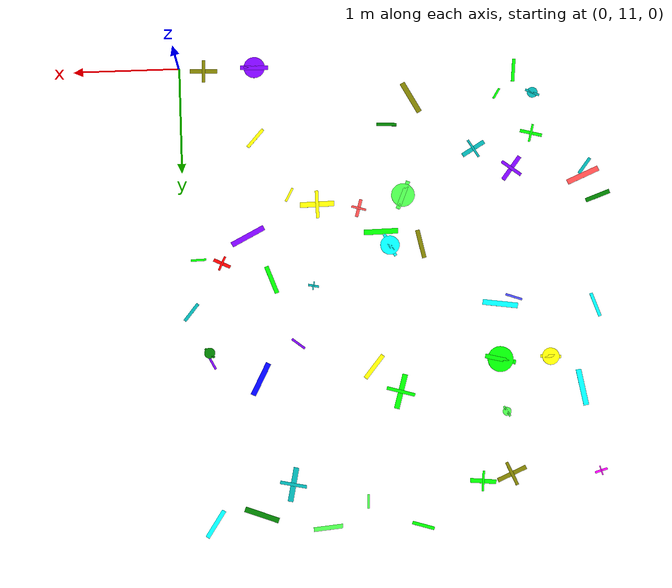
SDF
<sdf version="1.6">
 <world name="default">
  <model name="letter_Y_931">
   <static>true</static>
   <pose>-3.79 12.06 0.004 0 0 4.058</pose>
   <link name="link">
    <visual name="visual">
     <geometry><box><size>0.18 0.03 0.002</size></box></geometry>
     <material>
      <ambient>0.0 0.7 0.7 1</ambient>
      <diffuse>0.0 0.7 0.7 1</diffuse>
      <specular>0.1 0.1 0.1 1</specular>
     </material>
    </visual>
   </link>
  </model>
  <model name="letter_P_932">
   <static>true</static>
   <pose>-3.77 12.15 0.007 0 0 3.541</pose>
   <link name="link">
    <visual name="visual">
     <geometry><box><size>0.32 0.05 0.002</size></box></geometry>
     <material>
      <ambient>1.0 0.3 0.3 1</ambient>
      <diffuse>1.0 0.3 0.3 1</diffuse>
      <specular>0.1 0.1 0.1 1</specular>
     </material>
    </visual>
   </link>
  </model>
  <model name="letter_Y_933">
   <static>true</static>
   <pose>-3.90 12.35 0.004 0 0 3.486</pose>
   <link name="link">
    <visual name="visual">
     <geometry><box><size>0.24 0.04 0.002</size></box></geometry>
     <material>
      <ambient>0.0 0.5 0.0 1</ambient>
      <diffuse>0.0 0.5 0.0 1</diffuse>
      <specular>0.1 0.1 0.1 1</specular>
     </material>
    </visual>
   </link>
  </model>
  <model name="letter_N_934">
   <static>true</static>
   <pose>-3.83 13.38 0.004 0 0 5.041</pose>
   <link name="link">
    <visual name="visual">
     <geometry><box><size>0.23 0.03 0.002</size></box></geometry>
     <material>
      <ambient>0.0 1.0 1.0 1</ambient>
      <diffuse>0.0 1.0 1.0 1</diffuse>
      <specular>0.1 0.1 0.1 1</specular>
     </material>
    </visual>
   </link>
  </model>
  <model name="letter_P_937">
   <static>true</static>
   <pose>-3.67 14.15 0.011 0 0 4.885</pose>
   <link name="link">
    <visual name="visual">
     <geometry><box><size>0.34 0.05 0.002</size></box></geometry>
     <material>
      <ambient>0.0 1.0 1.0 1</ambient>
      <diffuse>0.0 1.0 1.0 1</diffuse>
      <specular>0.1 0.1 0.1 1</specular>
     </material>
    </visual>
   </link>
  </model>
  <model name="letter_E_940">
   <static>true</static>
   <pose>-3.81 14.93 0.004 0 0 3.435</pose>
   <link name="link">
    <visual name="visual">
     <geometry><box><size>0.12 0.02 0.002</size></box></geometry>
     <material>
      <ambient>1.0 0.0 1.0 1</ambient>
      <diffuse>1.0 0.0 1.0 1</diffuse>
      <specular>0.1 0.1 0.1 1</specular>
     </material>
    </visual>
    <visual name="visual2">
     <pose>0 0 0.001 0 0 1.57</pose>
     <geometry><box><size>0.09 0.01 0.001</size></box></geometry>
     <material><ambient>1.0 0.0 1.0 1</ambient><diffuse>1.0 0.0 1.0 1</diffuse></material>
    </visual>
   </link>
  </model>
  <model name="letter_M_998">
   <static>true</static>
   <pose>-3.16 11.12 0.007 0 0 4.607</pose>
   <link name="link">
    <visual name="visual">
     <geometry><box><size>0.22 0.03 0.002</size></box></geometry>
     <material>
      <ambient>0.0 1.0 0.0 1</ambient>
      <diffuse>0.0 1.0 0.0 1</diffuse>
      <specular>0.1 0.1 0.1 1</specular>
     </material>
    </visual>
   </link>
  </model>
  <model name="letter_Q_999">
   <static>true</static>
   <pose>-3.33 11.34 0.004 0 0 2.718</pose>
   <link name="link">
    <visual name="visual">
     <geometry><box><size>0.14 0.02 0.002</size></box></geometry>
     <material>
      <ambient>0.0 0.7 0.7 1</ambient>
      <diffuse>0.0 0.7 0.7 1</diffuse>
      <specular>0.1 0.1 0.1 1</specular>
     </material>
    </visual>
    <visual name="visual2">
     <geometry><cylinder><radius>0.05</radius><length>0.002</length></cylinder></geometry>
     <material><ambient>0.0 0.7 0.7 1</ambient><diffuse>0.0 0.7 0.7 1</diffuse></material>
    </visual>
   </link>
  </model>
  <model name="letter_S_1000">
   <static>true</static>
   <pose>-2.99 11.34 0.013 0 0 1.016</pose>
   <link name="link">
    <visual name="visual">
     <geometry><box><size>0.11 0.02 0.002</size></box></geometry>
     <material>
      <ambient>0.0 1.0 0.0 1</ambient>
      <diffuse>0.0 1.0 0.0 1</diffuse>
      <specular>0.1 0.1 0.1 1</specular>
     </material>
    </visual>
   </link>
  </model>
  <model name="letter_E_1001">
   <static>true</static>
   <pose>-3.30 11.73 0.009 0 0 6.027</pose>
   <link name="link">
    <visual name="visual">
     <geometry><box><size>0.21 0.03 0.002</size></box></geometry>
     <material>
      <ambient>0.0 1.0 0.0 1</ambient>
      <diffuse>0.0 1.0 0.0 1</diffuse>
      <specular>0.1 0.1 0.1 1</specular>
     </material>
    </visual>
    <visual name="visual2">
     <pose>0 0 0.001 0 0 1.57</pose>
     <geometry><box><size>0.17 0.02 0.001</size></box></geometry>
     <material><ambient>0.0 1.0 0.0 1</ambient><diffuse>0.0 1.0 0.0 1</diffuse></material>
    </visual>
   </link>
  </model>
  <model name="letter_A_1002">
   <static>true</static>
   <pose>-2.75 11.86 0.009 0 0 3.680</pose>
   <link name="link">
    <visual name="visual">
     <geometry><box><size>0.24 0.04 0.002</size></box></geometry>
     <material>
      <ambient>0.0 0.7 0.7 1</ambient>
      <diffuse>0.0 0.7 0.7 1</diffuse>
      <specular>0.1 0.1 0.1 1</specular>
     </material>
    </visual>
    <visual name="visual2">
     <pose>0 0 0.001 0 0 1.57</pose>
     <geometry><box><size>0.19 0.02 0.001</size></box></geometry>
     <material><ambient>0.0 0.7 0.7 1</ambient><diffuse>0.0 0.7 0.7 1</diffuse></material>
    </visual>
   </link>
  </model>
  <model name="letter_H_1003">
   <static>true</static>
   <pose>-3.10 12.06 0.011 0 0 0.919</pose>
   <link name="link">
    <visual name="visual">
     <geometry><box><size>0.27 0.04 0.002</size></box></geometry>
     <material>
      <ambient>0.5 0.0 1.0 1</ambient>
      <diffuse>0.5 0.0 1.0 1</diffuse>
      <specular>0.1 0.1 0.1 1</specular>
     </material>
    </visual>
    <visual name="visual2">
     <pose>0 0 0.001 0 0 1.57</pose>
     <geometry><box><size>0.22 0.03 0.001</size></box></geometry>
     <material><ambient>0.5 0.0 1.0 1</ambient><diffuse>0.5 0.0 1.0 1</diffuse></material>
    </visual>
   </link>
  </model>
  <model name="letter_D_1004">
   <static>true</static>
   <pose>-3.07 13.28 0.012 0 0 5.943</pose>
   <link name="link">
    <visual name="visual">
     <geometry><box><size>0.16 0.02 0.002</size></box></geometry>
     <material>
      <ambient>0.3 0.3 1.0 1</ambient>
      <diffuse>0.3 0.3 1.0 1</diffuse>
      <specular>0.1 0.1 0.1 1</specular>
     </material>
    </visual>
   </link>
  </model>
  <model name="letter_B_1005">
   <static>true</static>
   <pose>-2.94 13.34 0.005 0 0 3.003</pose>
   <link name="link">
    <visual name="visual">
     <geometry><box><size>0.33 0.05 0.002</size></box></geometry>
     <material>
      <ambient>0.0 1.0 1.0 1</ambient>
      <diffuse>0.0 1.0 1.0 1</diffuse>
      <specular>0.1 0.1 0.1 1</specular>
     </material>
    </visual>
   </link>
  </model>
  <model name="letter_Q_1006">
   <static>true</static>
   <pose>-2.92 13.86 0.011 0 0 2.900</pose>
   <link name="link">
    <visual name="visual">
     <geometry><box><size>0.29 0.04 0.002</size></box></geometry>
     <material>
      <ambient>0.0 1.0 0.0 1</ambient>
      <diffuse>0.0 1.0 0.0 1</diffuse>
      <specular>0.1 0.1 0.1 1</specular>
     </material>
    </visual>
    <visual name="visual2">
     <geometry><cylinder><radius>0.12</radius><length>0.002</length></cylinder></geometry>
     <material><ambient>0.0 1.0 0.0 1</ambient><diffuse>0.0 1.0 0.0 1</diffuse></material>
    </visual>
   </link>
  </model>
  <model name="letter_C_1007">
   <static>true</static>
   <pose>-3.39 13.85 0.008 0 0 3.086</pose>
   <link name="link">
    <visual name="visual">
     <geometry><box><size>0.19 0.03 0.002</size></box></geometry>
     <material>
      <ambient>1.0 1.0 0.0 1</ambient>
      <diffuse>1.0 1.0 0.0 1</diffuse>
      <specular>0.1 0.1 0.1 1</specular>
     </material>
    </visual>
    <visual name="visual2">
     <geometry><cylinder><radius>0.08</radius><length>0.002</length></cylinder></geometry>
     <material><ambient>1.0 1.0 0.0 1</ambient><diffuse>1.0 1.0 0.0 1</diffuse></material>
    </visual>
   </link>
  </model>
  <model name="letter_Q_1008">
   <static>true</static>
   <pose>-2.96 14.35 0.006 0 0 5.243</pose>
   <link name="link">
    <visual name="visual">
     <geometry><box><size>0.11 0.02 0.002</size></box></geometry>
     <material>
      <ambient>0.3 1.0 0.3 1</ambient>
      <diffuse>0.3 1.0 0.3 1</diffuse>
      <specular>0.1 0.1 0.1 1</specular>
     </material>
    </visual>
    <visual name="visual2">
     <geometry><cylinder><radius>0.04</radius><length>0.002</length></cylinder></geometry>
     <material><ambient>0.3 1.0 0.3 1</ambient><diffuse>0.3 1.0 0.3 1</diffuse></material>
    </visual>
   </link>
  </model>
  <model name="letter_E_1009">
   <static>true</static>
   <pose>-2.98 14.93 0.009 0 0 3.552</pose>
   <link name="link">
    <visual name="visual">
     <geometry><box><size>0.29 0.04 0.002</size></box></geometry>
     <material>
      <ambient>0.5 0.5 0.0 1</ambient>
      <diffuse>0.5 0.5 0.0 1</diffuse>
      <specular>0.1 0.1 0.1 1</specular>
     </material>
    </visual>
    <visual name="visual2">
     <pose>0 0 0.001 0 0 1.57</pose>
     <geometry><box><size>0.23 0.03 0.001</size></box></geometry>
     <material><ambient>0.5 0.5 0.0 1</ambient><diffuse>0.5 0.5 0.0 1</diffuse></material>
    </visual>
   </link>
  </model>
  <model name="letter_A_1010">
   <static>true</static>
   <pose>-2.71 14.99 0.013 0 0 6.191</pose>
   <link name="link">
    <visual name="visual">
     <geometry><box><size>0.24 0.04 0.002</size></box></geometry>
     <material>
      <ambient>0.0 1.0 0.0 1</ambient>
      <diffuse>0.0 1.0 0.0 1</diffuse>
      <specular>0.1 0.1 0.1 1</specular>
     </material>
    </visual>
    <visual name="visual2">
     <pose>0 0 0.001 0 0 1.57</pose>
     <geometry><box><size>0.19 0.02 0.001</size></box></geometry>
     <material><ambient>0.0 1.0 0.0 1</ambient><diffuse>0.0 1.0 0.0 1</diffuse></material>
    </visual>
   </link>
  </model>
  <model name="letter_J_1062">
   <static>true</static>
   <pose>-2.18 11.35 0.005 0 0 5.207</pose>
   <link name="link">
    <visual name="visual">
     <geometry><box><size>0.32 0.05 0.002</size></box></geometry>
     <material>
      <ambient>0.5 0.5 0.0 1</ambient>
      <diffuse>0.5 0.5 0.0 1</diffuse>
      <specular>0.1 0.1 0.1 1</specular>
     </material>
    </visual>
   </link>
  </model>
  <model name="letter_O_1065">
   <static>true</static>
   <pose>-2.07 12.28 0.010 0 0 1.176</pose>
   <link name="link">
    <visual name="visual">
     <geometry><box><size>0.28 0.04 0.002</size></box></geometry>
     <material>
      <ambient>0.3 1.0 0.3 1</ambient>
      <diffuse>0.3 1.0 0.3 1</diffuse>
      <specular>0.1 0.1 0.1 1</specular>
     </material>
    </visual>
    <visual name="visual2">
     <geometry><cylinder><radius>0.11</radius><length>0.002</length></cylinder></geometry>
     <material><ambient>0.3 1.0 0.3 1</ambient><diffuse>0.3 1.0 0.3 1</diffuse></material>
    </visual>
   </link>
  </model>
  <model name="letter_R_1066">
   <static>true</static>
   <pose>-1.94 11.60 0.003 0 0 6.237</pose>
   <link name="link">
    <visual name="visual">
     <geometry><box><size>0.19 0.03 0.002</size></box></geometry>
     <material>
      <ambient>0.0 0.5 0.0 1</ambient>
      <diffuse>0.0 0.5 0.0 1</diffuse>
      <specular>0.1 0.1 0.1 1</specular>
     </material>
    </visual>
   </link>
  </model>
  <model name="letter_I_1067">
   <static>true</static>
   <pose>-1.65 12.39 0.012 0 0 4.436</pose>
   <link name="link">
    <visual name="visual">
     <geometry><box><size>0.17 0.03 0.002</size></box></geometry>
     <material>
      <ambient>1.0 0.3 0.3 1</ambient>
      <diffuse>1.0 0.3 0.3 1</diffuse>
      <specular>0.1 0.1 0.1 1</specular>
     </material>
    </visual>
    <visual name="visual2">
     <pose>0 0 0.001 0 0 1.57</pose>
     <geometry><box><size>0.14 0.02 0.001</size></box></geometry>
     <material><ambient>1.0 0.3 0.3 1</ambient><diffuse>1.0 0.3 0.3 1</diffuse></material>
    </visual>
   </link>
  </model>
  <model name="letter_K_1068">
   <static>true</static>
   <pose>-2.22 12.75 0.006 0 0 1.777</pose>
   <link name="link">
    <visual name="visual">
     <geometry><box><size>0.27 0.04 0.002</size></box></geometry>
     <material>
      <ambient>0.5 0.5 0.0 1</ambient>
      <diffuse>0.5 0.5 0.0 1</diffuse>
      <specular>0.1 0.1 0.1 1</specular>
     </material>
    </visual>
   </link>
  </model>
  <model name="letter_G_1069">
   <static>true</static>
   <pose>-1.93 12.75 0.005 0 0 5.164</pose>
   <link name="link">
    <visual name="visual">
     <geometry><box><size>0.23 0.03 0.002</size></box></geometry>
     <material>
      <ambient>0.0 1.0 1.0 1</ambient>
      <diffuse>0.0 1.0 1.0 1</diffuse>
      <specular>0.1 0.1 0.1 1</specular>
     </material>
    </visual>
    <visual name="visual2">
     <geometry><cylinder><radius>0.09</radius><length>0.002</length></cylinder></geometry>
     <material><ambient>0.0 1.0 1.0 1</ambient><diffuse>0.0 1.0 1.0 1</diffuse></material>
    </visual>
   </link>
  </model>
  <model name="letter_J_1070">
   <static>true</static>
   <pose>-1.85 12.62 0.010 0 0 0.019</pose>
   <link name="link">
    <visual name="visual">
     <geometry><box><size>0.32 0.05 0.002</size></box></geometry>
     <material>
      <ambient>0.0 1.0 0.0 1</ambient>
      <diffuse>0.0 1.0 0.0 1</diffuse>
      <specular>0.1 0.1 0.1 1</specular>
     </material>
    </visual>
   </link>
  </model>
  <model name="letter_I_1071">
   <static>true</static>
   <pose>-1.98 14.13 0.005 0 0 1.290</pose>
   <link name="link">
    <visual name="visual">
     <geometry><box><size>0.33 0.05 0.002</size></box></geometry>
     <material>
      <ambient>0.0 1.0 0.0 1</ambient>
      <diffuse>0.0 1.0 0.0 1</diffuse>
      <specular>0.1 0.1 0.1 1</specular>
     </material>
    </visual>
    <visual name="visual2">
     <pose>0 0 0.001 0 0 1.57</pose>
     <geometry><box><size>0.27 0.03 0.001</size></box></geometry>
     <material><ambient>0.0 1.0 0.0 1</ambient><diffuse>0.0 1.0 0.0 1</diffuse></material>
    </visual>
   </link>
  </model>
  <model name="letter_W_1072">
   <static>true</static>
   <pose>-1.74 13.89 0.007 0 0 0.888</pose>
   <link name="link">
    <visual name="visual">
     <geometry><box><size>0.27 0.04 0.002</size></box></geometry>
     <material>
      <ambient>1.0 1.0 0.0 1</ambient>
      <diffuse>1.0 1.0 0.0 1</diffuse>
      <specular>0.1 0.1 0.1 1</specular>
     </material>
    </visual>
   </link>
  </model>
  <model name="letter_Z_1073">
   <static>true</static>
   <pose>-2.14 15.38 0.011 0 0 2.842</pose>
   <link name="link">
    <visual name="visual">
     <geometry><box><size>0.21 0.03 0.002</size></box></geometry>
     <material>
      <ambient>0.0 1.0 0.0 1</ambient>
      <diffuse>0.0 1.0 0.0 1</diffuse>
      <specular>0.1 0.1 0.1 1</specular>
     </material>
    </visual>
   </link>
  </model>
  <model name="letter_P_1074">
   <static>true</static>
   <pose>-1.64 15.14 0.005 0 0 1.542</pose>
   <link name="link">
    <visual name="visual">
     <geometry><box><size>0.13 0.02 0.002</size></box></geometry>
     <material>
      <ambient>0.3 1.0 0.3 1</ambient>
      <diffuse>0.3 1.0 0.3 1</diffuse>
      <specular>0.1 0.1 0.1 1</specular>
     </material>
    </visual>
   </link>
  </model>
  <model name="letter_C_1121">
   <static>true</static>
   <pose>-0.71 11.01 0.009 0 0 6.247</pose>
   <link name="link">
    <visual name="visual">
     <geometry><box><size>0.26 0.04 0.002</size></box></geometry>
     <material>
      <ambient>0.5 0.0 1.0 1</ambient>
      <diffuse>0.5 0.0 1.0 1</diffuse>
      <specular>0.1 0.1 0.1 1</specular>
     </material>
    </visual>
    <visual name="visual2">
     <geometry><cylinder><radius>0.10</radius><length>0.002</length></cylinder></geometry>
     <material><ambient>0.5 0.0 1.0 1</ambient><diffuse>0.5 0.0 1.0 1</diffuse></material>
    </visual>
   </link>
  </model>
  <model name="letter_D_1123">
   <static>true</static>
   <pose>-0.70 11.69 0.009 0 0 3.979</pose>
   <link name="link">
    <visual name="visual">
     <geometry><box><size>0.22 0.03 0.002</size></box></geometry>
     <material>
      <ambient>1.0 1.0 0.0 1</ambient>
      <diffuse>1.0 1.0 0.0 1</diffuse>
      <specular>0.1 0.1 0.1 1</specular>
     </material>
    </visual>
   </link>
  </model>
  <model name="letter_L_1124">
   <static>true</static>
   <pose>-1.26 12.34 0.013 0 0 0.016</pose>
   <link name="link">
    <visual name="visual">
     <geometry><box><size>0.32 0.05 0.002</size></box></geometry>
     <material>
      <ambient>1.0 1.0 0.0 1</ambient>
      <diffuse>1.0 1.0 0.0 1</diffuse>
      <specular>0.1 0.1 0.1 1</specular>
     </material>
    </visual>
    <visual name="visual2">
     <pose>0 0 0.001 0 0 1.57</pose>
     <geometry><box><size>0.26 0.03 0.001</size></box></geometry>
     <material><ambient>1.0 1.0 0.0 1</ambient><diffuse>1.0 1.0 0.0 1</diffuse></material>
    </visual>
   </link>
  </model>
  <model name="letter_M_1125">
   <static>true</static>
   <pose>-1.00 12.24 0.007 0 0 1.072</pose>
   <link name="link">
    <visual name="visual">
     <geometry><box><size>0.14 0.02 0.002</size></box></geometry>
     <material>
      <ambient>1.0 1.0 0.0 1</ambient>
      <diffuse>1.0 1.0 0.0 1</diffuse>
      <specular>0.1 0.1 0.1 1</specular>
     </material>
    </visual>
   </link>
  </model>
  <model name="letter_F_1126">
   <static>true</static>
   <pose>-1.20 13.11 0.011 0 0 2.937</pose>
   <link name="link">
    <visual name="visual">
     <geometry><box><size>0.10 0.02 0.002</size></box></geometry>
     <material>
      <ambient>0.0 0.7 0.7 1</ambient>
      <diffuse>0.0 0.7 0.7 1</diffuse>
      <specular>0.1 0.1 0.1 1</specular>
     </material>
    </visual>
    <visual name="visual2">
     <pose>0 0 0.001 0 0 1.57</pose>
     <geometry><box><size>0.08 0.01 0.001</size></box></geometry>
     <material><ambient>0.0 0.7 0.7 1</ambient><diffuse>0.0 0.7 0.7 1</diffuse></material>
    </visual>
   </link>
  </model>
  <model name="letter_V_1127">
   <static>true</static>
   <pose>-0.81 13.04 0.007 0 0 5.063</pose>
   <link name="link">
    <visual name="visual">
     <geometry><box><size>0.27 0.04 0.002</size></box></geometry>
     <material>
      <ambient>0.0 1.0 0.0 1</ambient>
      <diffuse>0.0 1.0 0.0 1</diffuse>
      <specular>0.1 0.1 0.1 1</specular>
     </material>
    </visual>
   </link>
  </model>
  <model name="letter_B_1128">
   <static>true</static>
   <pose>-0.60 12.62 0.009 0 0 0.471</pose>
   <link name="link">
    <visual name="visual">
     <geometry><box><size>0.34 0.05 0.002</size></box></geometry>
     <material>
      <ambient>0.5 0.0 1.0 1</ambient>
      <diffuse>0.5 0.0 1.0 1</diffuse>
      <specular>0.1 0.1 0.1 1</specular>
     </material>
    </visual>
   </link>
  </model>
  <model name="letter_M_1129">
   <static>true</static>
   <pose>-0.68 13.97 0.012 0 0 4.232</pose>
   <link name="link">
    <visual name="visual">
     <geometry><box><size>0.33 0.05 0.002</size></box></geometry>
     <material>
      <ambient>0.0 0.0 1.0 1</ambient>
      <diffuse>0.0 0.0 1.0 1</diffuse>
      <specular>0.1 0.1 0.1 1</specular>
     </material>
    </visual>
   </link>
  </model>
  <model name="letter_M_1130">
   <static>true</static>
   <pose>-1.04 13.65 0.008 0 0 2.477</pose>
   <link name="link">
    <visual name="visual">
     <geometry><box><size>0.15 0.02 0.002</size></box></geometry>
     <material>
      <ambient>0.5 0.0 1.0 1</ambient>
      <diffuse>0.5 0.0 1.0 1</diffuse>
      <specular>0.1 0.1 0.1 1</specular>
     </material>
    </visual>
   </link>
  </model>
  <model name="letter_S_1131">
   <static>true</static>
   <pose>-1.26 15.37 0.010 0 0 3.236</pose>
   <link name="link">
    <visual name="visual">
     <geometry><box><size>0.27 0.04 0.002</size></box></geometry>
     <material>
      <ambient>0.3 1.0 0.3 1</ambient>
      <diffuse>0.3 1.0 0.3 1</diffuse>
      <specular>0.1 0.1 0.1 1</specular>
     </material>
    </visual>
   </link>
  </model>
  <model name="letter_M_1132">
   <static>true</static>
   <pose>-0.65 15.23 0.009 0 0 2.782</pose>
   <link name="link">
    <visual name="visual">
     <geometry><box><size>0.33 0.05 0.002</size></box></geometry>
     <material>
      <ambient>0.0 0.5 0.0 1</ambient>
      <diffuse>0.0 0.5 0.0 1</diffuse>
      <specular>0.1 0.1 0.1 1</specular>
     </material>
    </visual>
   </link>
  </model>
  <model name="letter_L_1133">
   <static>true</static>
   <pose>-0.95 14.96 0.004 0 0 4.505</pose>
   <link name="link">
    <visual name="visual">
     <geometry><box><size>0.32 0.05 0.002</size></box></geometry>
     <material>
      <ambient>0.0 0.7 0.7 1</ambient>
      <diffuse>0.0 0.7 0.7 1</diffuse>
      <specular>0.1 0.1 0.1 1</specular>
     </material>
    </visual>
    <visual name="visual2">
     <pose>0 0 0.001 0 0 1.57</pose>
     <geometry><box><size>0.25 0.03 0.001</size></box></geometry>
     <material><ambient>0.0 0.7 0.7 1</ambient><diffuse>0.0 0.7 0.7 1</diffuse></material>
    </visual>
   </link>
  </model>
  <model name="letter_H_1183">
   <static>true</static>
   <pose>-0.23 11.03 0.011 0 0 6.246</pose>
   <link name="link">
    <visual name="visual">
     <geometry><box><size>0.26 0.04 0.002</size></box></geometry>
     <material>
      <ambient>0.5 0.5 0.0 1</ambient>
      <diffuse>0.5 0.5 0.0 1</diffuse>
      <specular>0.1 0.1 0.1 1</specular>
     </material>
    </visual>
    <visual name="visual2">
     <pose>0 0 0.001 0 0 1.57</pose>
     <geometry><box><size>0.21 0.03 0.001</size></box></geometry>
     <material><ambient>0.5 0.5 0.0 1</ambient><diffuse>0.5 0.5 0.0 1</diffuse></material>
    </visual>
   </link>
  </model>
  <model name="letter_I_1186">
   <static>true</static>
   <pose>-0.35 12.87 0.012 0 0 2.690</pose>
   <link name="link">
    <visual name="visual">
     <geometry><box><size>0.17 0.03 0.002</size></box></geometry>
     <material>
      <ambient>1.0 0.0 0.0 1</ambient>
      <diffuse>1.0 0.0 0.0 1</diffuse>
      <specular>0.1 0.1 0.1 1</specular>
     </material>
    </visual>
    <visual name="visual2">
     <pose>0 0 0.001 0 0 1.57</pose>
     <geometry><box><size>0.14 0.02 0.001</size></box></geometry>
     <material><ambient>1.0 0.0 0.0 1</ambient><diffuse>1.0 0.0 0.0 1</diffuse></material>
    </visual>
   </link>
  </model>
  <model name="letter_Y_1187">
   <static>true</static>
   <pose>-0.13 12.83 0.010 0 0 3.172</pose>
   <link name="link">
    <visual name="visual">
     <geometry><box><size>0.14 0.02 0.002</size></box></geometry>
     <material>
      <ambient>0.0 1.0 0.0 1</ambient>
      <diffuse>0.0 1.0 0.0 1</diffuse>
      <specular>0.1 0.1 0.1 1</specular>
     </material>
    </visual>
   </link>
  </model>
  <model name="letter_U_1188">
   <static>true</static>
   <pose>-0.05 13.32 0.003 0 0 0.888</pose>
   <link name="link">
    <visual name="visual">
     <geometry><box><size>0.20 0.03 0.002</size></box></geometry>
     <material>
      <ambient>0.0 0.7 0.7 1</ambient>
      <diffuse>0.0 0.7 0.7 1</diffuse>
      <specular>0.1 0.1 0.1 1</specular>
     </material>
    </visual>
   </link>
  </model>
  <model name="letter_J_1189">
   <static>true</static>
   <pose>-0.23 13.80 0.004 0 0 2.048</pose>
   <link name="link">
    <visual name="visual">
     <geometry><box><size>0.14 0.02 0.002</size></box></geometry>
     <material>
      <ambient>0.5 0.0 1.0 1</ambient>
      <diffuse>0.5 0.0 1.0 1</diffuse>
      <specular>0.1 0.1 0.1 1</specular>
     </material>
    </visual>
   </link>
  </model>
  <model name="letter_C_1190">
   <static>true</static>
   <pose>-0.21 13.71 0.007 0 0 5.514</pose>
   <link name="link">
    <visual name="visual">
     <geometry><box><size>0.12 0.02 0.002</size></box></geometry>
     <material>
      <ambient>0.0 0.5 0.0 1</ambient>
      <diffuse>0.0 0.5 0.0 1</diffuse>
      <specular>0.1 0.1 0.1 1</specular>
     </material>
    </visual>
    <visual name="visual2">
     <geometry><cylinder><radius>0.05</radius><length>0.002</length></cylinder></geometry>
     <material><ambient>0.0 0.5 0.0 1</ambient><diffuse>0.0 0.5 0.0 1</diffuse></material>
    </visual>
   </link>
  </model>
  <model name="letter_K_1192">
   <static>true</static>
   <pose>-0.22 15.30 0.007 0 0 0.983</pose>
   <link name="link">
    <visual name="visual">
     <geometry><box><size>0.29 0.04 0.002</size></box></geometry>
     <material>
      <ambient>0.0 1.0 1.0 1</ambient>
      <diffuse>0.0 1.0 1.0 1</diffuse>
      <specular>0.1 0.1 0.1 1</specular>
     </material>
    </visual>
   </link>
  </model>
 </world>
</sdf>
